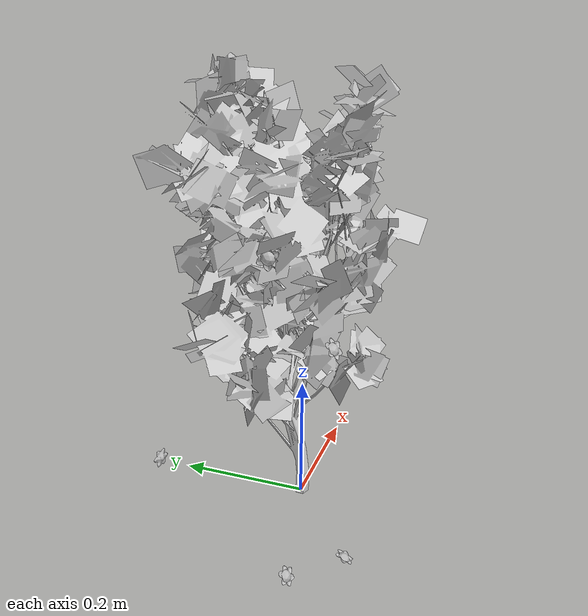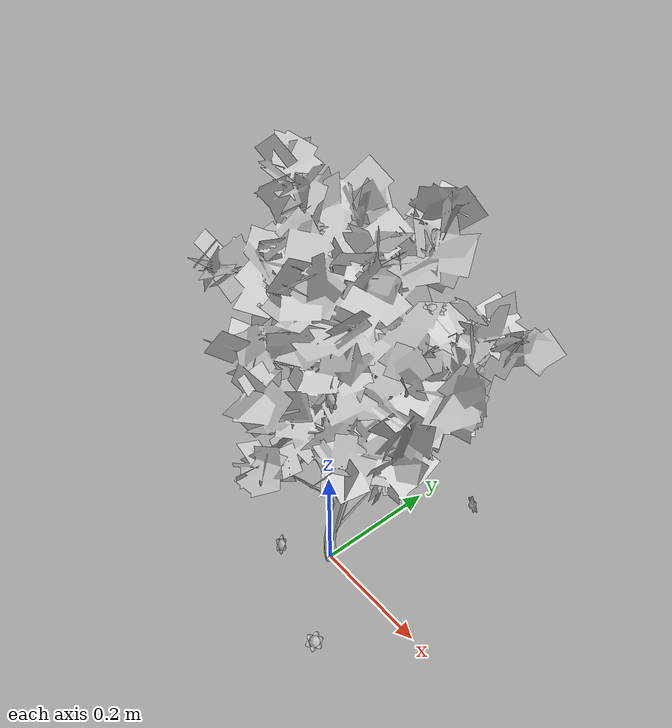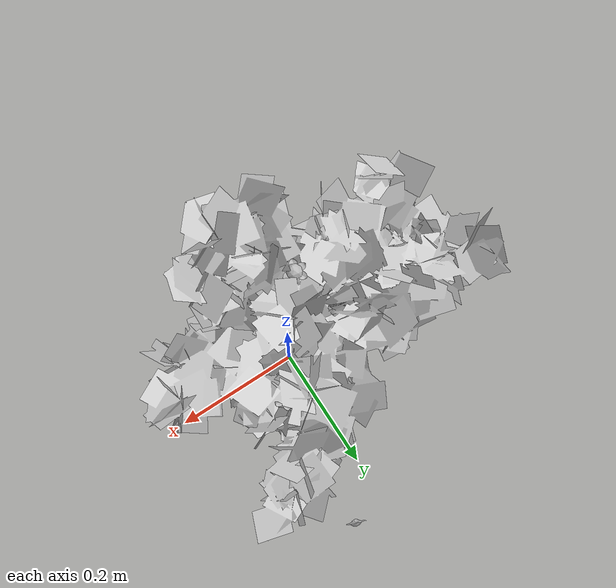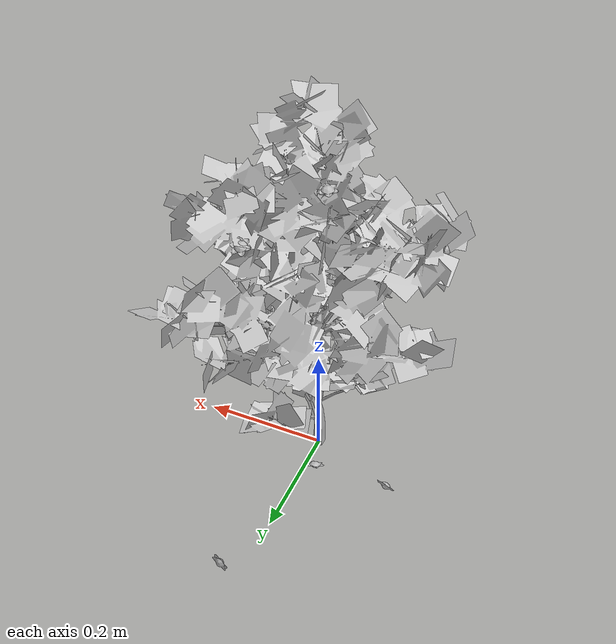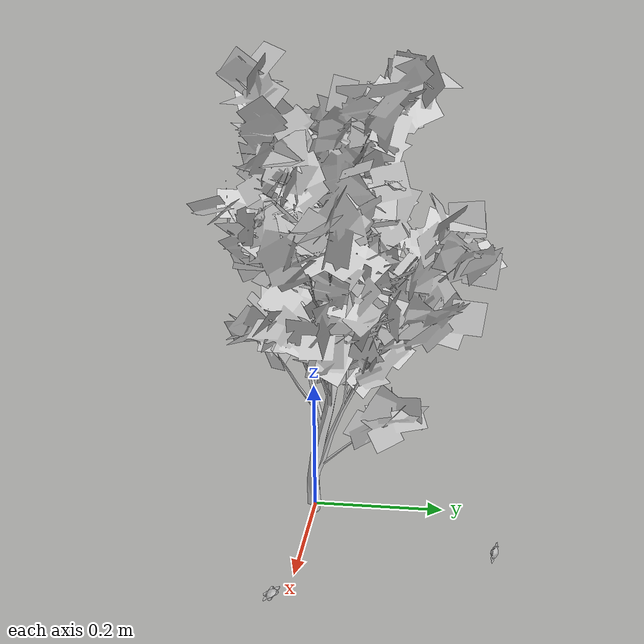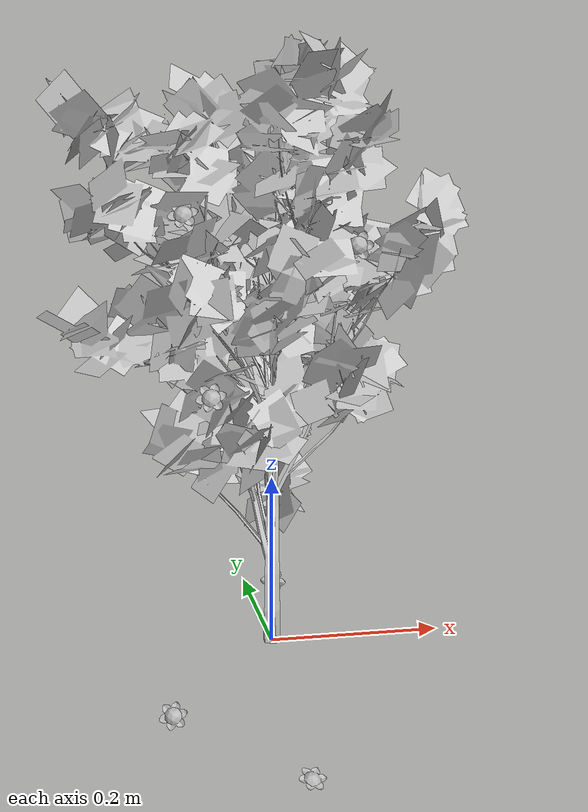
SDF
<!-- skew 2 -->
<?xml version="1.0"?>
<sdf version="1.6">
  <model name="tree-flowers">
    <static>true</static>
    <link name="link"></link>

    <include>
      <uri>model://tree-mesh</uri>
      <pose>0 0 0 0 0 0</pose>
    </include>
    <joint name="tree_joint" type="fixed">
      <child>tree-mesh::link</child>
      <parent>link</parent>
    </joint>

    <include>
      <name>bramble_0</name>
      <uri>model://bramble</uri>
      <pose>0.036045 -0.066132 -0.15162 0.477087 0.09982 0.051467</pose>
    </include>
    <include>
      <name>bramble_1</name>
      <uri>model://bramble</uri>
      <pose>-0.118935 -0.013842 -0.081691 0.992055 -0.236186 -0.143781</pose>
    </include>
    <include>
      <name>bramble_2</name>
      <uri>model://bramble</uri>
      <pose>0.084429 -0.05383 0.475019 1.26092 0.010547 -0.303346</pose>
    </include>
    <include>
      <name>bramble_3</name>
      <uri>model://bramble</uri>
      <pose>-0.100754 -0.011684 0.50616 0.92295 -0.152842 -0.152657</pose>
    </include>
    <include>
      <name>bramble_4</name>
      <uri>model://bramble</uri>
      <pose>-0.198057 -0.016410 0.499770 0 -1.49206 0</pose>
    </include>
    <include>
      <name>bramble_5</name>
      <uri>model://bramble</uri>
      <pose>0.074226 0.121901 0.51745 -0.369146 0 0</pose>
    </include>
    <include>
      <name>bramble_6</name>
      <uri>model://bramble</uri>
      <pose>-0.079732 -0.069156 0.314542 0.92295 -0.152842 -0.152657</pose>
    </include>
    <include>
      <name>bramble_7</name>
      <uri>model://bramble</uri>
      <pose>0.054226 0.071901 0.31745 -0.369146 0 0</pose>
    </include>
    <include>
      <name>bramble_8</name>
      <uri>model://bramble</uri>
      <pose>0.052801 0.276553 -0.036333 -1.67778 -0.004909 -0.311632</pose>
    </include>
    <include>
      <name>bramble_9</name>
      <uri>model://bramble</uri>
      <pose>-0.015011 0.003586 0.565314 0 -0 0</pose>
    </include>

    <joint name="flower_joint_0" type="fixed">
      <child>bramble_0::flower_link</child>
      <parent>link</parent>
    </joint>
    <joint name="flower_joint_1" type="fixed">
      <child>bramble_1::flower_link</child>
      <parent>link</parent>
    </joint>
    <joint name="flower_joint_2" type="fixed">
      <child>bramble_2::flower_link</child>
      <parent>link</parent>
    </joint>
    <joint name="flower_joint_3" type="fixed">
      <child>bramble_3::flower_link</child>
      <parent>link</parent>
    </joint>
    <joint name="flower_joint_4" type="fixed">
      <child>bramble_4::flower_link</child>
      <parent>link</parent>
    </joint>
    <joint name="flower_joint_5" type="fixed">
      <child>bramble_5::flower_link</child>
      <parent>link</parent>
    </joint>
    <joint name="flower_joint_6" type="fixed">
      <child>bramble_6::flower_link</child>
      <parent>link</parent>
    </joint>
    <joint name="flower_joint_7" type="fixed">
      <child>bramble_7::flower_link</child>
      <parent>link</parent>
    </joint>
      <joint name="flower_joint_8" type="fixed">
      <child>bramble_8::flower_link</child>
      <parent>link</parent>
    </joint>
    <joint name="flower_joint_9" type="fixed">
      <child>bramble_9::flower_link</child>
      <parent>link</parent>
    </joint>

  </model>
</sdf>

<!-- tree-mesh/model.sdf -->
<sdf version="1.6">
  <model name="tree-mesh">
    <static>true</static>
    <link name="link">

      <collision name="collision">
        <geometry>
          <mesh>
            <uri>model://tree-mesh/meshes/new_tree.dae</uri>
            <scale>0.0625 0.0625 0.0625</scale>
          </mesh>
        </geometry>
      </collision>

      <!-- simplified collision for sake of speed since leaves shouldn't be blocking anyway -->

      <visual name="leaves">
        <geometry>
          <mesh>
            <uri>model://tree-mesh/meshes/leaves.dae</uri>
            <scale>0.0325 0.0325 0.0325</scale>
          </mesh>
        </geometry>
        <material>
          <script>
            <uri>model://tree-mesh/materials/scripts/</uri>
            <uri>model://tree-mesh/materials/textures/</uri>
            <name>NewTree/Branch</name>
          </script>
        </material>
      </visual>
      <visual name="bark">
        <geometry>
          <mesh>
            <uri>model://tree-mesh/meshes/bark.dae</uri>
            <scale>0.0325 0.0325 0.0325</scale>
          </mesh>
        </geometry>
        <material>
          <script>
            <uri>model://tree-mesh/materials/scripts/</uri>
            <uri>model://tree-mesh/materials/textures/</uri>
            <name>NewTree/Bark</name>
          </script>
        </material>
      </visual>
    </link>
  </model>
</sdf>

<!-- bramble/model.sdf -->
<sdf version="1.6">
  <model name="bramble">
    <static>true</static>
    <link name="flower_link">
      <collision name="body_collision">
        <geometry>
          <mesh>
            <uri>model://bramble/meshes/bramble.dae</uri>
            <scale>0.2 0.2 0.2</scale>
          </mesh>
        </geometry>
      </collision>
      <visual name="petals">
        <geometry>
          <mesh>
            <uri>model://bramble/meshes/bramble.dae</uri>
            <scale>0.2 0.2 0.2</scale>
            <submesh>
              <name>petal</name>
            </submesh>
          </mesh>
        </geometry>
        <material>
          <script>
            <uri>model://bramble/materials/scripts/</uri>
            <uri>model://bramble/materials/textures/</uri>
            <name>Bramble/Petal</name>
          </script>
        </material>
      </visual>
      <visual name="carpel">
        <geometry>
          <mesh>
            <uri>model://bramble/meshes/bramble.dae</uri>
            <scale>0.2 0.2 0.2</scale>
            <submesh>
              <name>carpel</name>
            </submesh>
          </mesh>
        </geometry>
        <material>
          <script>
            <uri>model://bramble/materials/scripts/</uri>
            <uri>model://bramble/materials/textures/</uri>
            <name>Bramble/Carpel</name>
          </script>
        </material>
      </visual>
      <visual name="stamen">
        <geometry>
          <mesh>
            <uri>model://bramble/meshes/bramble.dae</uri>
            <scale>0.2 0.2 0.2</scale>
            <submesh>
              <name>stamen</name>
            </submesh>
          </mesh>
        </geometry>
        <material>
          <script>
            <uri>model://bramble/materials/scripts/</uri>
            <uri>model://bramble/materials/textures/</uri>
            <name>Bramble/Stamen</name>
          </script>
        </material>
      </visual>
    </link>
  </model>
</sdf>
